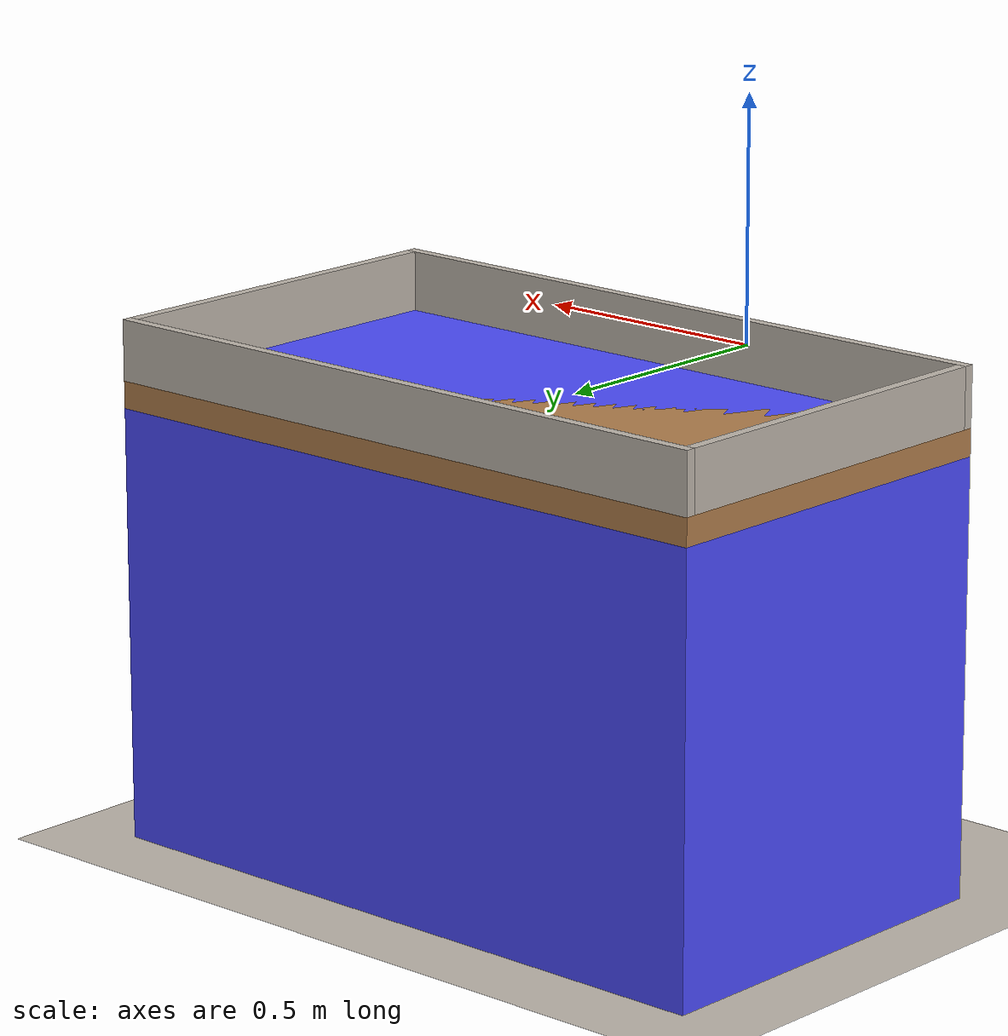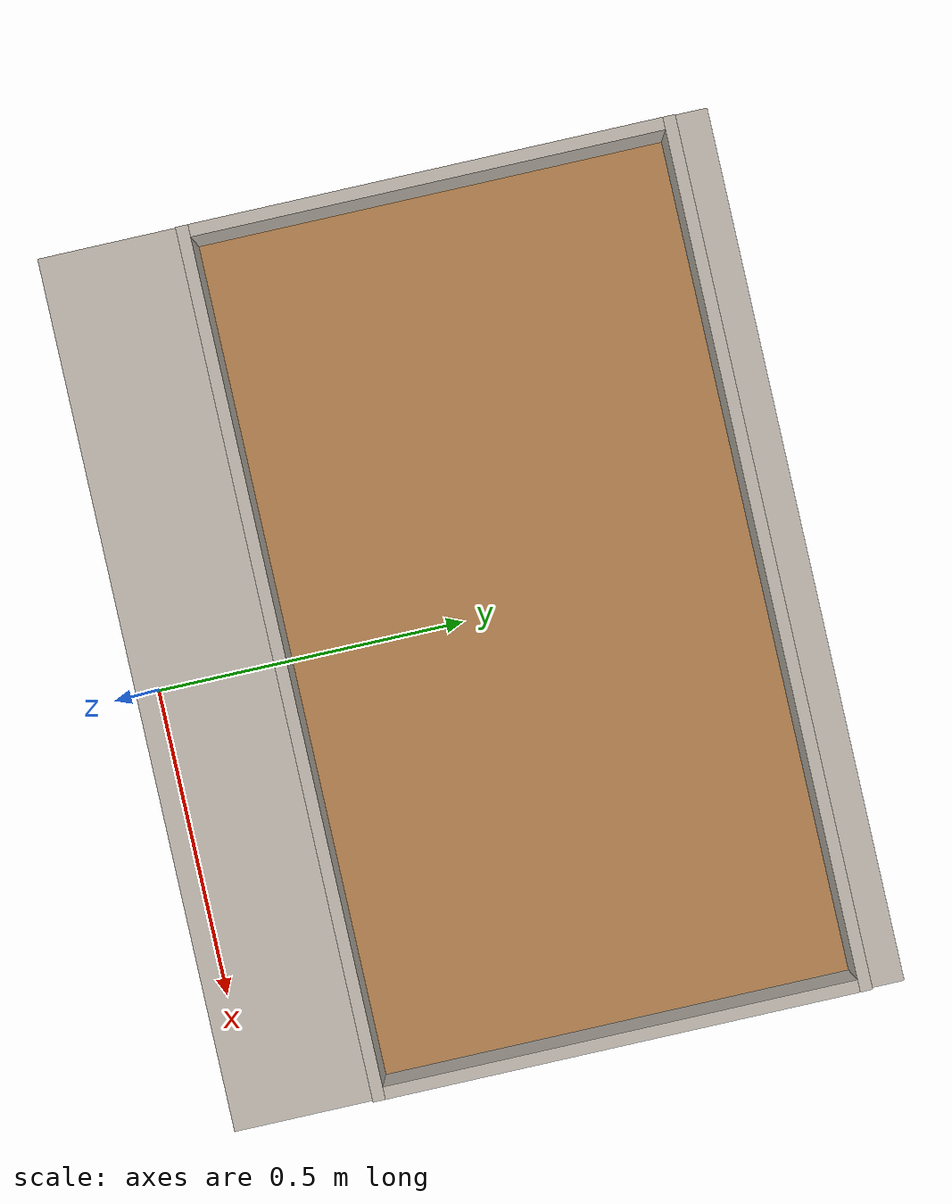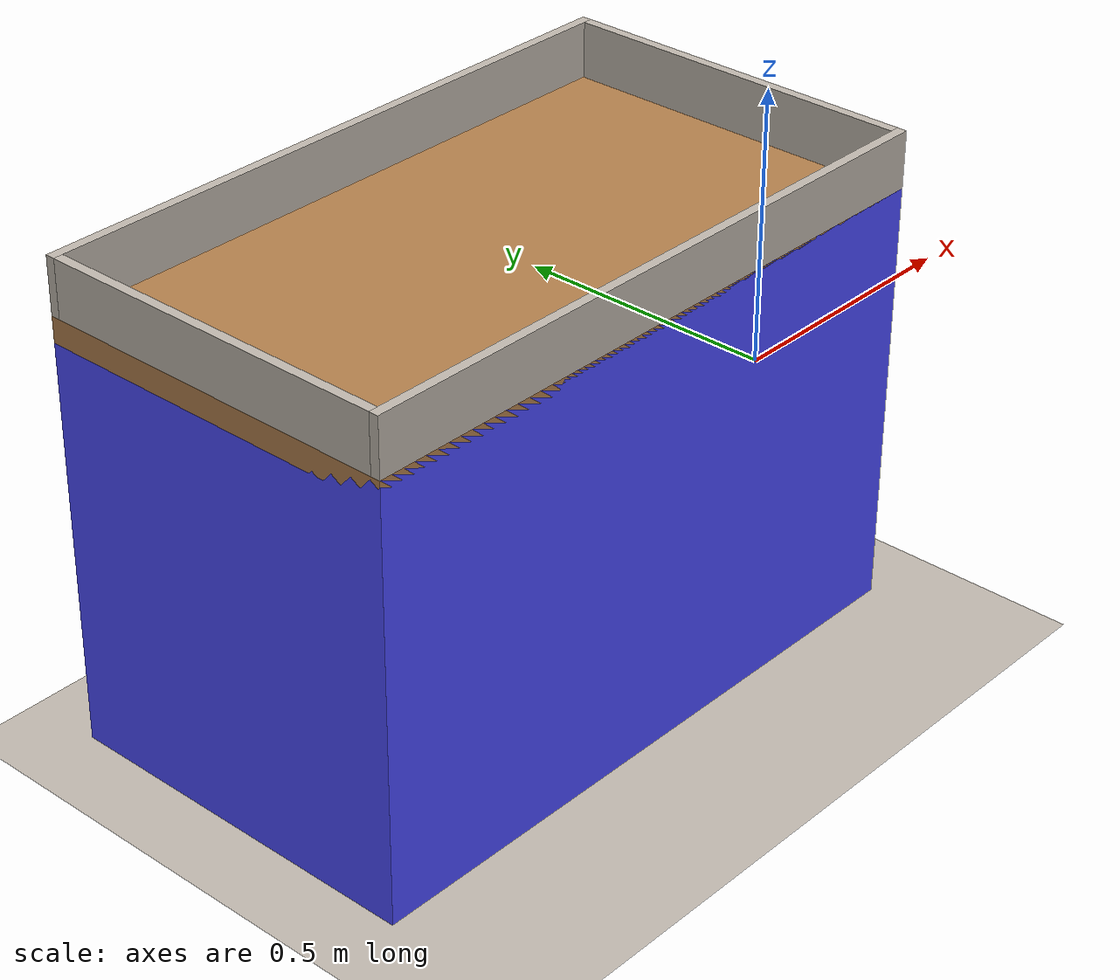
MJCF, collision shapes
<mujoco>
    <option timestep='0.0025' iterations="50" tolerance="1e-10" solver="Newton" jacobian="dense" cone="elliptic"/>

    <asset>
        <!-- night sky -->
        <texture type="skybox" builtin="gradient" rgb1=".50 .495 .48" rgb2=".50 .495 .48" width="32" height="32"/>
        <texture name="T_table" type="cube" file="../textures/wood2.png"/>
        <texture name="T_floor" type="2d" file="../textures/floor2.png"/>

        <material name="basic_floor" texture="T_floor" texrepeat="12 12" shininess=".3" specular="0.5"
                  reflectance="0.2"/>
        <material name="table_wood" texture="T_table" shininess=".3" specular="0.5"/>
        <material name="table_col" rgba="0.3 0.3 1.0 0.5" shininess="0" specular="0"/>

        <mesh file="../objects/meshes/table/tablebody.stl" name="tablebody" scale="1 1 1"/>
        <mesh file="../objects/meshes/table/tabletop.stl" name="tabletop" scale="1 1 1"/>
    </asset>

    <asset>
        <texture name="T_wallmetal" type="cube" file="../textures/metal.png"/>
        <material name="wall_metal" texture="T_wallmetal" shininess="1" reflectance="1" specular=".5"/>
    </asset>

    <visual>
        <map fogstart="1.5" fogend="5" force="0.1" znear="0.1"/>
        <quality shadowsize="4096" offsamples="4"/>

        <headlight ambient="0.4 0.4 0.4"/>

    </visual>

    <worldbody>
        <light castshadow="false" directional='true' diffuse='.3 .3 .3' specular='0.3 0.3 0.3' pos='-1 -1 1'
               dir='1 1 -1'/>
        <light directional='true' diffuse='.3 .3 .3' specular='0.3 0.3 0.3' pos='1 -1 1' dir='-1 1 -1'/>
        <light castshadow="false" directional='true' diffuse='.3 .3 .3' specular='0.3 0.3 0.3' pos='0 1 1'
               dir='0 -1 -1'/>
        <body name="tablelink" pos="0 .6 0">
            <geom material="table_wood" group="1" type="box" size=".7 .4 .027" pos="0 0 -.027" conaffinity="0"
                  contype="0"/>
            <geom material="table_wood" group="1" mesh="tablebody" pos="0 0 -0.65" type="mesh" conaffinity="0"
                  contype="0"/>
            <geom material="table_col" group="4" pos="0.0 0.0 -0.46" size="0.7 0.4 0.46" type="box" conaffinity="1"
                  contype="0"/>
        </body>

        <body name="RetainingWall" pos="0.0 0.6 0.06">
            <geom material="wall_metal" type="box" size=".7 .01 .06" pos="0. -0.39 0." conaffinity="1" condim="3"
                  contype="0"/>
            <geom material="wall_metal" type="box" size=".7 .01 .06" pos="0. 0.39 0." conaffinity="1" condim="3"
                  contype="0"/>
            <geom material="wall_metal" type="box" size=".01 .38 .06" pos="-.69 0. 0." conaffinity="1" condim="3"
                  contype="0"/>
            <geom material="wall_metal" type="box" size=".01 .38 .06" pos=".69 0. 0." conaffinity="1" condim="3"
                  contype="0"/>
        </body>

        <geom name="floor" size="4 4 .1" pos="0 0 -.913" conaffinity="1" contype="1" type="plane" material="basic_floor"
              condim="3"/>

    </worldbody>

</mujoco>
